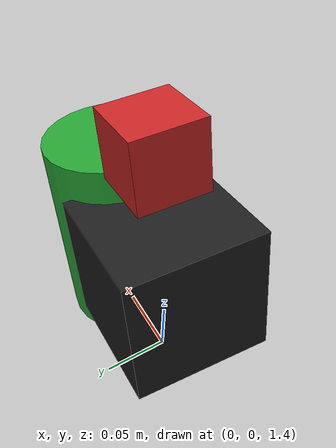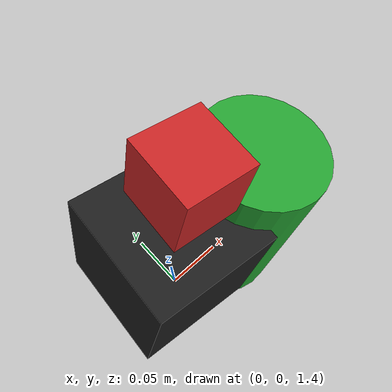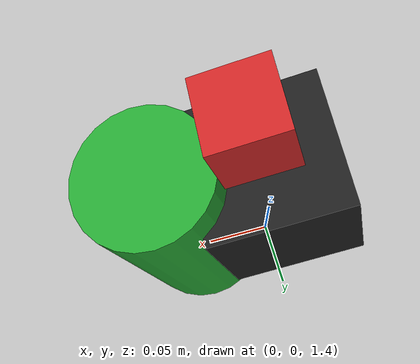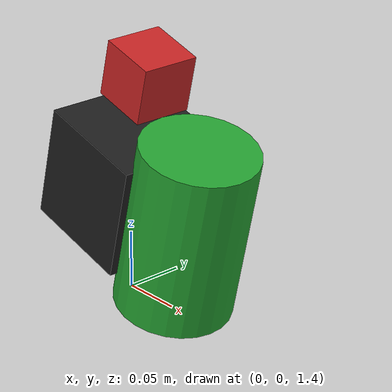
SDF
<sdf version="1.5">
 <world name="default">
  <model name="ground_plane">
   <static>1</static>
   <link name="link">
    <collision name="collision">
     <geometry><plane><normal>0 0 1</normal><size>100 100</size></plane></geometry>
     <surface><friction><ode><mu>100</mu><mu2>50</mu2></ode></friction></surface>
    </collision>
    <visual name="visual">
     <cast_shadows>0</cast_shadows>
     <geometry><plane><normal>0 0 1</normal><size>100 100</size></plane></geometry>
     <material>
      <script><uri>file://media/materials/scripts/gazebo.material</uri><name>Gazebo/Grey</name></script>
     </material>
    </visual>
    <velocity_decay><linear>0</linear><angular>0</angular></velocity_decay>
   </link>
  </model>
  <model name="eye">
   <link name="base_link">
    <inertial>
     <pose>1.49999e-07 0 1.99999e-07 0 -0 0</pose>
     <mass>5.00002</mass>
     <inertia>
      <ixx>0.0830021</ixx>
      <ixy>0</ixy>
      <ixz>1.49999e-13</ixz>
      <iyy>0.0830022</iyy>
      <iyz>0</iyz>
      <izz>0.0830021</izz>
     </inertia>
    </inertial>
    <collision name="base_link_collision">
     <geometry><box><size>0.1 0.1 0.1</size></box></geometry>
     <surface>
      <contact><ode><kp>1e+08</kp><kd>10000</kd></ode></contact>
      <friction><ode><mu>10</mu><mu2>10</mu2></ode></friction>
     </surface>
    </collision>
    <collision name="base_link_collision_camera_link">
     <pose>0 0 0.1 0 -0 0</pose>
     <geometry><box><size>0.05 0.05 0.05</size></box></geometry>
     <surface>
      <contact><ode><kp>1e+08</kp><kd>10000</kd></ode></contact>
      <friction><ode><mu>10</mu><mu2>10</mu2></ode></friction>
     </surface>
    </collision>
    <collision name="base_link_collision_sonar_link">
     <pose>0.075 0 0 3.14159 -2.06823e-13 2.06823e-13</pose>
     <geometry><cylinder><length>0.15</length><radius>0.05</radius></cylinder></geometry>
     <surface>
      <contact><ode><kp>1e+08</kp><kd>10000</kd></ode></contact>
      <friction><ode><mu>10</mu><mu2>10</mu2></ode></friction>
     </surface>
    </collision>
    <visual name="base_link_visual">
     <geometry><box><size>0.1 0.1 0.1</size></box></geometry>
     <material><script><name>Gazebo/Black</name><uri>__default__</uri></script></material>
    </visual>
    <visual name="base_link_visual_camera_link">
     <pose>0 0 0.1 0 -0 0</pose>
     <geometry><box><size>0.05 0.05 0.05</size></box></geometry>
     <material><script><name>Gazebo/Red</name><uri>__default__</uri></script></material>
    </visual>
    <visual name="base_link_visual_sonar_link">
     <pose>0.075 0 0 3.14159 -2.06823e-13 2.06823e-13</pose>
     <geometry><cylinder><length>0.15</length><radius>0.05</radius></cylinder></geometry>
     <material><script><name>Gazebo/Green</name><uri>__default__</uri></script></material>
    </visual>
    <velocity_decay><linear>0</linear><angular>0</angular></velocity_decay>
    <velocity_decay><linear>0</linear><angular>0</angular></velocity_decay>
    <sensor name="camera1" type="camera">
     <update_rate>30</update_rate>
     <camera name="head">
      <horizontal_fov>1.39626</horizontal_fov>
      <image><width>800</width><height>800</height><format>R8G8B8</format></image>
      <clip><near>0.02</near><far>300</far></clip>
      <noise><type>gaussian</type><mean>0</mean><stddev>0.007</stddev></noise>
     </camera>
     <plugin name="camera_controller" filename="libgazebo_ros_camera.so">
      <alwaysOn>true</alwaysOn>
      <updateRate>0.0</updateRate>
      <cameraName>eye/camera1</cameraName>
      <imageTopicName>image_raw</imageTopicName>
      <cameraInfoTopicName>camera_info</cameraInfoTopicName>
      <frameName>camera_link</frameName>
      <hackBaseline>0.07</hackBaseline>
      <distortionK1>0.0</distortionK1>
      <distortionK2>0.0</distortionK2>
      <distortionK3>0.0</distortionK3>
      <distortionT1>0.0</distortionT1>
      <distortionT2>0.0</distortionT2>
      <robotNamespace>/</robotNamespace>
     </plugin>
     <pose>0 0 0.1 0 -0 0</pose>
    </sensor>
    <gravity>0</gravity>
    <velocity_decay><linear>0</linear><angular>0</angular></velocity_decay>
    <sensor name="ray_sensor" type="ray">
     <always_on>1</always_on>
     <update_rate>15</update_rate>
     <visualize>0</visualize>
     <ray>
      <scan>
       <horizontal>
        <samples>640</samples>
        <resolution>1</resolution>
        <min_angle>-0.392699</min_angle>
        <max_angle>0.392699</max_angle>
       </horizontal>
       <vertical>
        <samples>32</samples>
        <resolution>1</resolution>
        <min_angle>-0.174533</min_angle>
        <max_angle>0.174533</max_angle>
       </vertical>
      </scan>
      <range><min>0.1</min><max>30</max><resolution>0.01</resolution></range>
     </ray>
     <plugin name="gazebo_ros_imaging_sonar_controller" filename="libimaging_sonar.so">
      <alwaysOn>true</alwaysOn>
      <updateRate>30.0</updateRate>
      <topicName>sonar_image</topicName>
      <frameName>sonar_link</frameName>
      <robotNamespace>/</robotNamespace>
     </plugin>
     <pose>0.075 0 0 3.14159 -2.06823e-13 2.06823e-13</pose>
    </sensor>
   </link>
   <static>0</static>
   <plugin name="uw_vel_cmd" filename="libuw_VelCmd.so">
    <robot_namespace>eye</robot_namespace>
    <robotNamespace>/</robotNamespace>
   </plugin>
   <pose>-0 0 1.5 0.007385 0.239708 -0.058659</pose>
  </model>
 </world>
</sdf>
